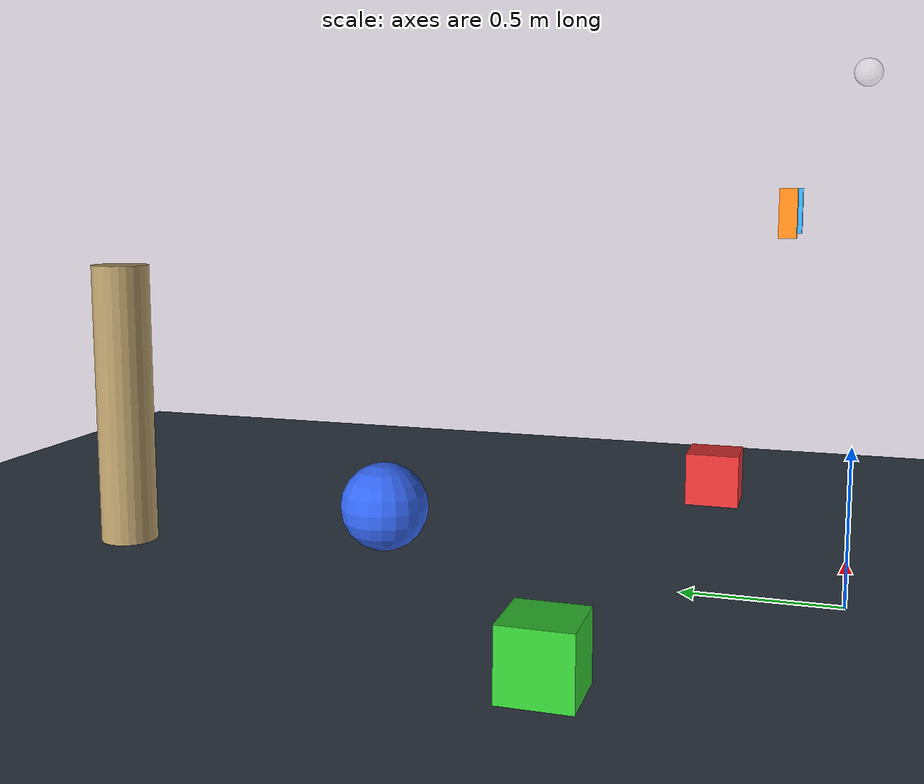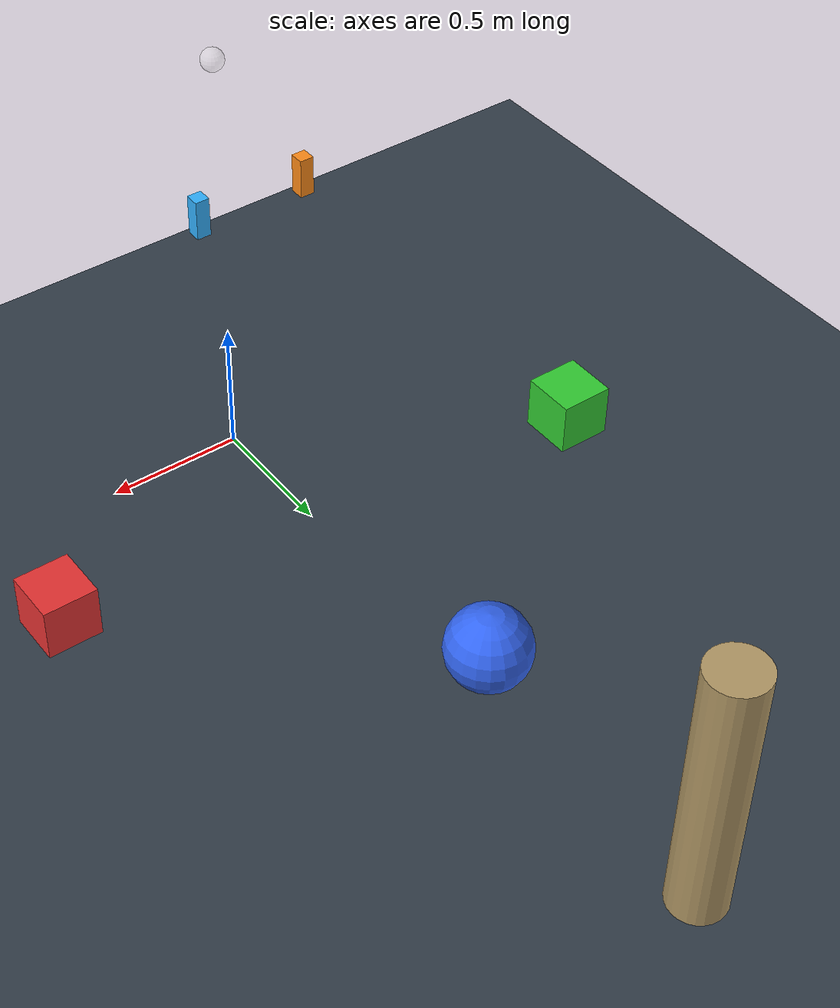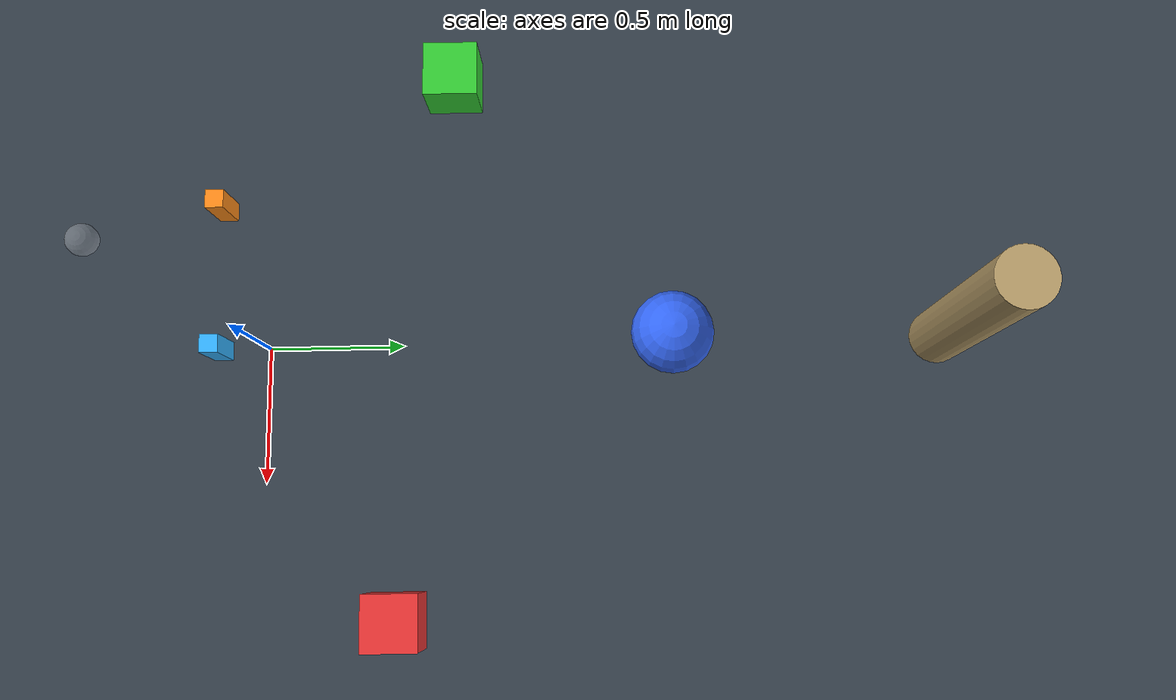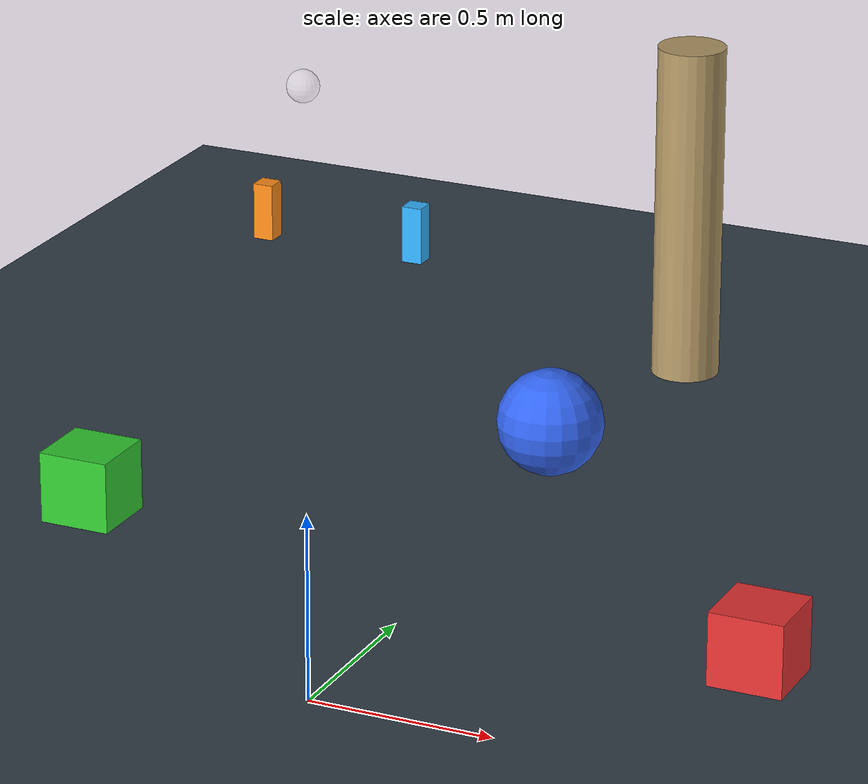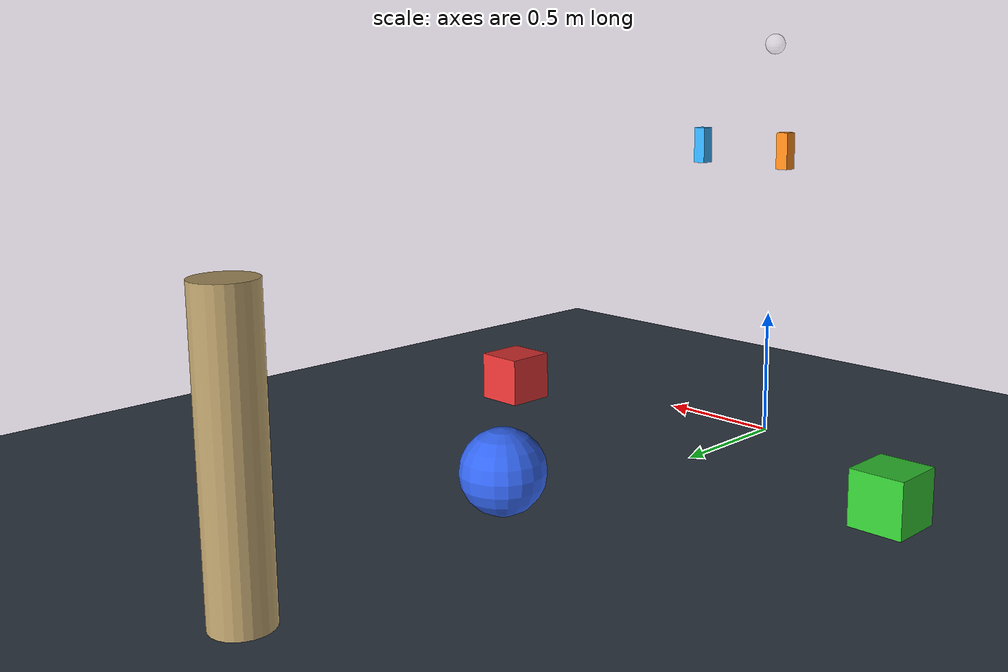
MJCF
<mujoco model="vr_scene">
  <option timestep="0.01" gravity="0 0 -9.81"/>
  <visual>
    <global offwidth="1280" offheight="480"/>
    <quality offsamples="4"/>
    <headlight diffuse="0.7 0.7 0.7" ambient="0.3 0.3 0.3" specular="0.2 0.2 0.2"/>
  </visual>
  <asset>
    <texture name="skybox" type="skybox" builtin="gradient" rgb1="0.5 0.7 0.9" rgb2="0.1 0.15 0.25" width="256" height="256"/>
    <texture name="grid" type="2d" builtin="checker" rgb1="0.25 0.3 0.35" rgb2="0.15 0.18 0.22" width="512" height="512"/>
    <material name="grid" texture="grid" texrepeat="10 10" reflectance="0.1"/>
  </asset>

  <worldbody>
    <light pos="2 2 4" dir="-0.5 -0.5 -1" diffuse="0.8 0.8 0.8" specular="0.3 0.3 0.3"/>

    <geom name="floor" type="plane" size="5 5 0.1" material="grid"/>

    <!-- Some scene objects to look at -->
    <body name="box_red" pos="1.0 0.5 0.15">
      <freejoint/>
      <geom type="box" size="0.1 0.1 0.1" rgba="0.9 0.2 0.2 1"/>
    </body>
    <body name="box_green" pos="-1.0 0.7 0.15">
      <freejoint/>
      <geom type="box" size="0.1 0.1 0.1" rgba="0.2 0.8 0.2 1"/>
    </body>
    <body name="sphere_blue" pos="0.0 1.5 0.2">
      <freejoint/>
      <geom type="sphere" size="0.15" rgba="0.2 0.4 0.95 1"/>
    </body>
    <body name="pillar" pos="0 2.5 0.5">
      <geom type="cylinder" size="0.1 0.5" rgba="0.7 0.6 0.4 1"/>
    </body>

    <body name="head" mocap="true" pos="0 0 1.6">
      <geom type="sphere" size="0.04" rgba="1 1 1 0.25" contype="0" conaffinity="0"/>
      <camera name="left_eye"  pos="-0.032 0 0" fovy="90"/>
      <camera name="right_eye" pos=" 0.032 0 0" fovy="90"/>
    </body>

    <!-- Controllers as mocap bodies -->
    <body name="controller_left" mocap="true" pos="-0.2 0.2 1.2">
      <geom type="box" size="0.025 0.025 0.07" rgba="1.0 0.55 0.1 1" contype="0" conaffinity="0"/>
    </body>
    <body name="controller_right" mocap="true" pos="0.2 0.2 1.2">
      <geom type="box" size="0.025 0.025 0.07" rgba="0.2 0.7 1.0 1" contype="0" conaffinity="0"/>
    </body>
  </worldbody>
</mujoco>
